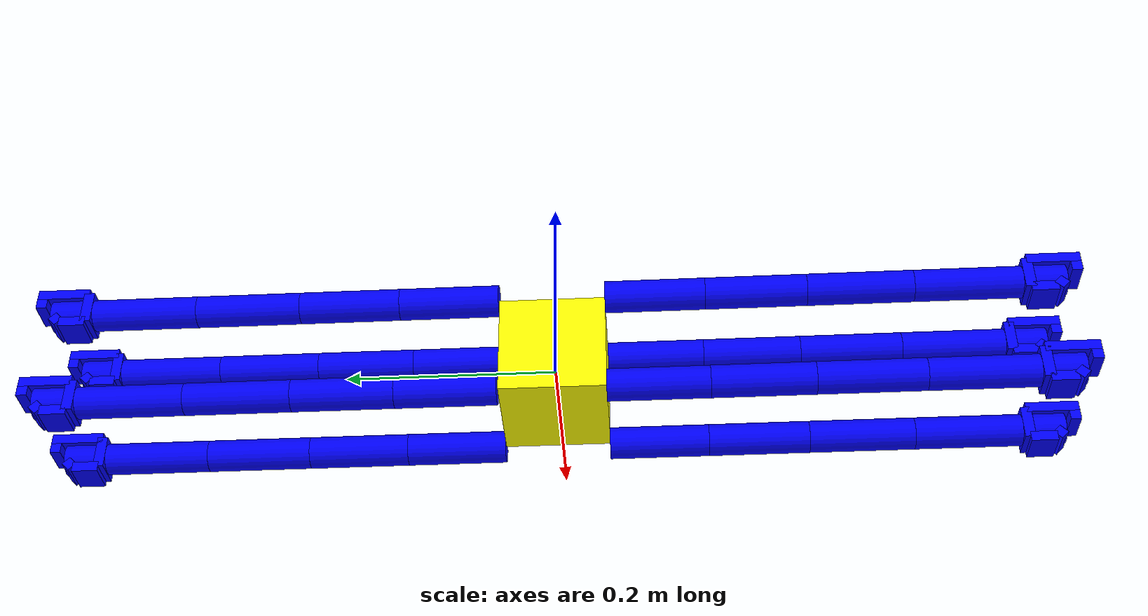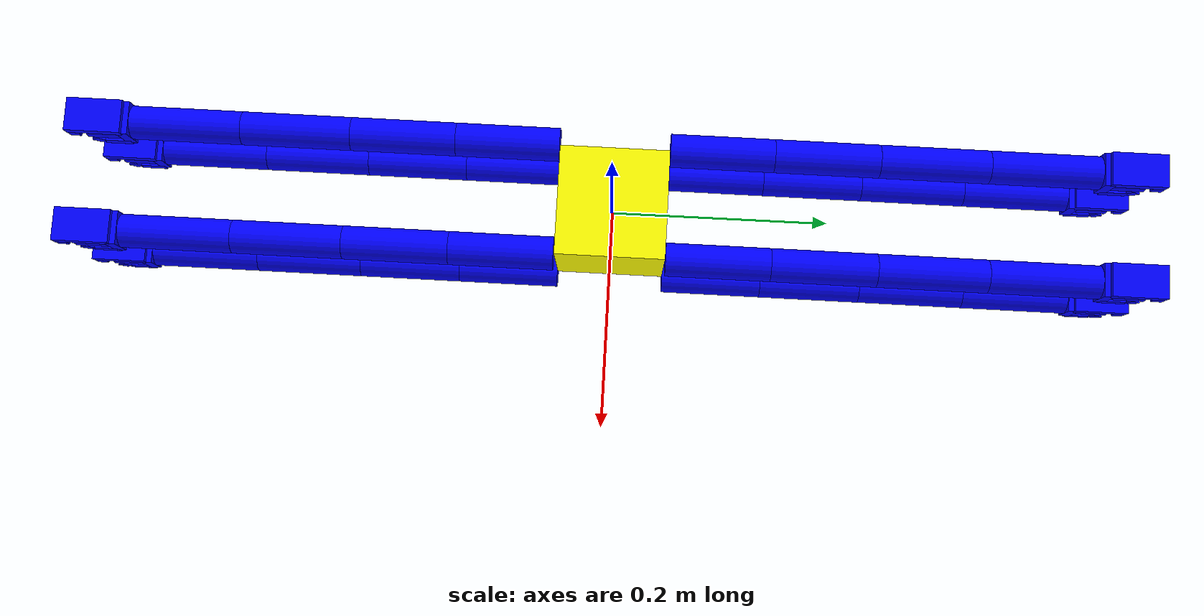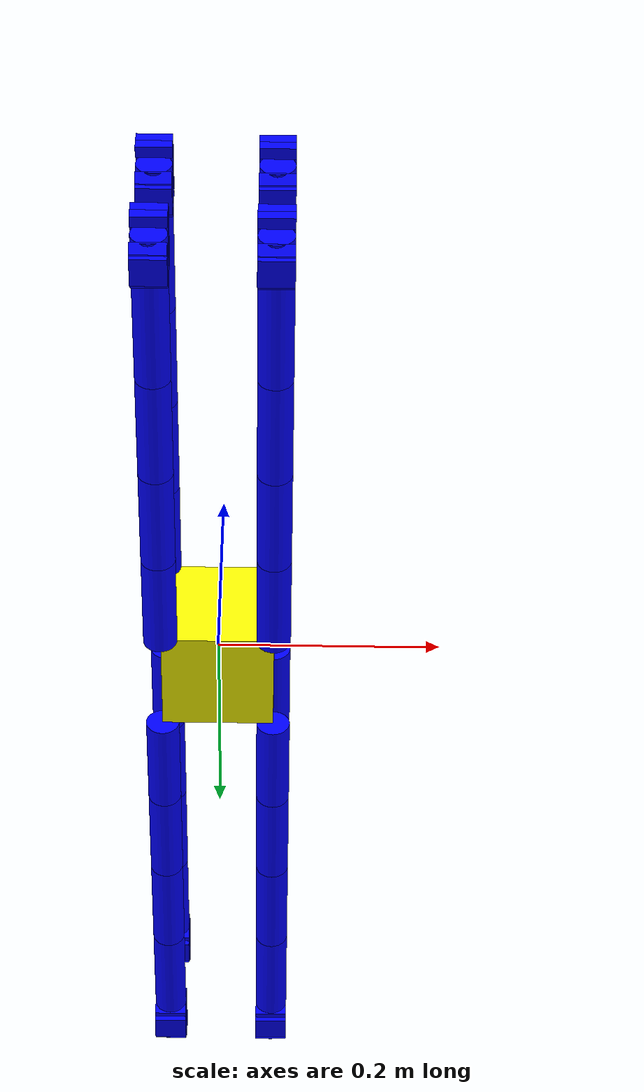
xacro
<?xml version="1.0"?>
<robot xmlns:xacro="http://www.ros.org/wiki/xacro" name="demo_robo" >
  <!-- The following included files set up definitions of parts of the robot body -->
  <!-- misc common stuff? -->
  <xacro:include filename="$(find gazebo_demo)/urdf/common.xacro" />
  <!-- material definition -->
  <xacro:include filename="$(find gazebo_demo)/urdf/material.urdf.xacro" />
  <!-- gazebo definition -->
  <xacro:include filename="$(find gazebo_demo)/gazebo/gazebo.urdf.xacro" />
  <!-- body definition -->
  <xacro:include filename="$(find gazebo_demo)/urdf/body/body.urdf.xacro" />
  <!-- limb definition -->
  <xacro:include filename="$(find gazebo_demo)/urdf/limb/limb.urdf.xacro" />
  <!-- end effector definition -->
  <xacro:include filename="$(find gazebo_demo)/urdf/end_effector/end_effector.urdf.xacro" />

  <!-- Now we can start using the macros included above to define our robot -->
  <xacro:common/>
  <!-- body and 8 limbs -->
  <link name="base_link"/>
  <xacro:BaseLinkToBody name_="body"/>
  <property name="lx" value="0.050"/>
  <property name="ly" value="0.050"/>
  <property name="lz" value="0.050"/>
  <xacro:link_limb4 limbNo="1" parent="body" px="+${lx}" py="+${ly}" pz="+${lz}" prow="-${M_PI/2}" ppit="0" pyaw="0"/>
  <xacro:link_limb4 limbNo="2" parent="body" px="+${lx}" py="-${ly}" pz="+${lz}" prow="-${M_PI/2}" ppit="0" pyaw="-${M_PI}"/>
  <xacro:link_limb4 limbNo="3" parent="body" px="+${lx}" py="+${ly}" pz="-${lz}" prow="-${M_PI/2}" ppit="0" pyaw="0"/>
  <xacro:link_limb4 limbNo="4" parent="body" px="+${lx}" py="-${ly}" pz="-${lz}" prow="-${M_PI/2}" ppit="0" pyaw="-${M_PI}"/>
  <xacro:link_limb4 limbNo="5" parent="body" px="-${lx}" py="+${ly}" pz="+${lz}" prow="-${M_PI/2}" ppit="0" pyaw="0"/>
  <xacro:link_limb4 limbNo="6" parent="body" px="-${lx}" py="-${ly}" pz="+${lz}" prow="-${M_PI/2}" ppit="0" pyaw="-${M_PI}"/>
  <xacro:link_limb4 limbNo="7" parent="body" px="-${lx}" py="+${ly}" pz="-${lz}" prow="-${M_PI/2}" ppit="0" pyaw="0"/>
  <xacro:link_limb4 limbNo="8" parent="body" px="-${lx}" py="-${ly}" pz="-${lz}" prow="-${M_PI/2}" ppit="0" pyaw="-${M_PI}"/>

  <!-- End Effector -->
  <property name="lengthEE" value="0.100"/>
  <xacro:EE_gripper limbNo="1" parent="link1_4" px="+${lengthEE}" py="0" pz="0" prow="-${M_PI/2}" ppit="0" pyaw="0"/>
  <xacro:EE_gripper limbNo="2" parent="link2_4" px="+${lengthEE}" py="0" pz="0" prow="-${M_PI/2}" ppit="0" pyaw="0"/>
  <xacro:EE_gripper limbNo="3" parent="link3_4" px="+${lengthEE}" py="0" pz="0" prow="-${M_PI/2}" ppit="0" pyaw="0"/>
  <xacro:EE_gripper limbNo="4" parent="link4_4" px="+${lengthEE}" py="0" pz="0" prow="-${M_PI/2}" ppit="0" pyaw="0"/>
  <xacro:EE_gripper limbNo="5" parent="link5_4" px="+${lengthEE}" py="0" pz="0" prow="-${M_PI/2}" ppit="0" pyaw="0"/>
  <xacro:EE_gripper limbNo="6" parent="link6_4" px="+${lengthEE}" py="0" pz="0" prow="-${M_PI/2}" ppit="0" pyaw="0"/>
  <xacro:EE_gripper limbNo="7" parent="link7_4" px="+${lengthEE}" py="0" pz="0" prow="-${M_PI/2}" ppit="0" pyaw="0"/>
  <xacro:EE_gripper limbNo="8" parent="link8_4" px="+${lengthEE}" py="0" pz="0" prow="-${M_PI/2}" ppit="0" pyaw="0"/>

  <xacro:ControlAndImu namespace="/demo_robo" imu_body="body"/>
</robot>

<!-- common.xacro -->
<robot xmlns:xacro="http://ros.org/wiki/xacro">
  <property name="M_PI" value="3.1415926535897931" />
  <property name="VELOCITY_LIMIT_SCALE" value="0.6" />

  <!-- motor information -->
  <property name="dx_lo" value="-${150*M_PI/180}" />
  <property name="dx_up" value="+${150*M_PI/180}" />
  <property name="dx_eff" value="3.621866" />
  <property name="dx_vel" value="7.016224" />

  <!-- Mathmatic -->
  <property name="Sin45" value="0.707106781"/>
  <property name="Cos45" value="0.707106781"/>

  <xacro:macro name="common">
  </xacro:macro>
</robot>

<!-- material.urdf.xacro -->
<robot xmlns:xacro="http://ros.org/wiki/xacro">
  <material name="Cyan">
    <color rgba="0.0 0.0 1.0 1.0"/>
  </material>

  <material name="Blue">
    <color rgba="0.0 0.0 0.8 1.0"/>
  </material>

  <material name="Green">
    <color rgba="0.0 0.8 0.0 1.0"/>
  </material>

  <material name="Red">
    <color rgba="0.8 0.0 0.0 1.0"/>
  </material>

  <material name="White">
    <color rgba="1.0 1.0 1.0 1.0"/>
  </material>

  <material name="Yellow">
    <color rgba="1.0 1.0 0.0 1.0"/>
  </material>

</robot>

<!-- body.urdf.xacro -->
<robot xmlns:xacro="http://ros.org/wiki/xacro">
  <xacro:include filename="$(find gazebo_demo)/urdf/body/body.gazebo.xacro"/>
  <xacro:include filename="$(find gazebo_demo)/urdf/body/body.transmission.xacro"/>
  <xacro:include filename="$(find gazebo_demo)/urdf/common.xacro"/>

  <!-- Geometry property for box -->
  <!-- body size -->
  <property name="b_x" value="0.100"/>
  <property name="b_y" value="0.100"/>
  <property name="b_z" value="0.100"/>
  <!-- body mass -->
  <property name="b_m" value="0.300"/>
  <!-- inertia tensol -->
  <property name="b_ixx" value="${(1/12)*b_m*(b_y*b_y+b_z*b_z)}"/>
  <property name="b_iyy" value="${(1/12)*b_m*(b_x*b_x+b_z*b_z)}"/>
  <property name="b_izz" value="${(1/12)*b_m*(b_x*b_x+b_y*b_y)}"/>
  <property name="b_ixy" value="0"/>
  <property name="b_ixz" value="0"/>
  <property name="b_iyz" value="0"/>

  <!-- ============= Body Description ============= -->
  <xacro:macro name="BaseLinkToBody" params="name_">
    <joint name="jointblTobody" type="fixed">
      <parent link="base_link"/>
      <child link="${name_}"/>
      <origin xyz="0 0 0" rpy="0 0 0"/>
    </joint>
    <!-- central body -->
    <link name="${name_}">
      <inertial>
        <origin xyz="0 0 0" rpy="0 0 0"/>
        <mass value="${b_m}"/>
        <inertia ixx="+${b_ixx}" ixy="-${b_ixy}" ixz="-${b_ixz}"
                                 iyy="+${b_iyy}" iyz="-${b_iyz}"
                                                 izz="+${b_izz}"/>
      </inertial>
      <visual>
        <origin xyz="0 0 0" rpy="0 0 0"/>
        <geometry>
          <box size="${b_x} ${b_y} ${b_z}"/>
        </geometry>
        <material name="Yellow"/>
      </visual>
      <collision>
        <origin xyz="0 0 0" rpy="0 0 0"/>
        <geometry>
          <box size="${b_x} ${b_y} ${b_z}"/>
        </geometry>
      </collision>
    </link>

    <xacro:BaseLinkToBody_gazebo name="${name_}" />
    <xacro:BaseLinkToBody_transmission name="${name_}" />
  </xacro:macro>
</robot>

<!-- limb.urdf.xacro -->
<!-- XML namespaces -->
<robot xmlns:xacro="http://www.ros.org/wiki/xacro">
  <xacro:include filename="$(find gazebo_demo)/urdf/limb/limb.gazebo.xacro"/>
  <xacro:include filename="$(find gazebo_demo)/urdf/limb/limb.transmission.xacro"/>
  <xacro:include filename="$(find gazebo_demo)/urdf/common.xacro"/>

  <!-- length and radius property of cylinder link of a limb -->
  <!-- link1 -->
  <property name="l1_length" value="0.094" />
  <property name="l1_radius" value="0.015" />
  <property name="l1_mass"   value="0.2"/>
  <property name="l1_ixx"    value="${(1/4)*l1_mass*l1_radius*l1_radius+(1/12)*l1_mass*l1_length*l1_length}"/>
  <property name="l1_iyy"    value="${(1/4)*l1_mass*l1_radius*l1_radius+(1/12)*l1_mass*l1_length*l1_length}"/>
  <property name="l1_izz"    value="${(1/2)*l1_mass*l1_radius*l1_radius}"/>
  <property name="l1_ixy"    value="0" />
  <property name="l1_ixz"    value="0" />
  <property name="l1_iyz"    value="0" />
  <!-- link2 -->
  <property name="l2_length" value="0.095" />
  <property name="l2_radius" value="0.015" />
  <property name="l2_mass"   value="0.2"/>
  <property name="l2_ixx"    value="${(1/4)*l2_mass*l2_radius*l2_radius+(1/12)*l2_mass*l2_length*l2_length}"/>
  <property name="l2_iyy"    value="${(1/4)*l2_mass*l2_radius*l2_radius+(1/12)*l2_mass*l2_length*l2_length}"/>
  <property name="l2_izz"    value="${(1/2)*l2_mass*l2_radius*l2_radius}"/>
  <property name="l2_ixy"    value="0" />
  <property name="l2_ixz"    value="0" />
  <property name="l2_iyz"    value="0" />
  <!-- link3 -->
  <property name="l3_length" value="0.099" />
  <property name="l3_radius" value="0.015" />
  <property name="l3_mass"   value="0.2"/>
  <property name="l3_ixx"    value="${(1/4)*l3_mass*l3_radius*l3_radius+(1/12)*l3_mass*l3_length*l3_length}"/>
  <property name="l3_iyy"    value="${(1/4)*l3_mass*l3_radius*l3_radius+(1/12)*l3_mass*l3_length*l3_length}"/>
  <property name="l3_izz"    value="${(1/2)*l3_mass*l3_radius*l3_radius}"/>
  <property name="l3_ixy"    value="0" />
  <property name="l3_ixz"    value="0" />
  <property name="l3_iyz"    value="0" />
  <!-- link4 -->
  <property name="l4_length" value="0.140" />
  <property name="l4_radius" value="0.015" />
  <property name="l4_mass"   value="0.2"/>
  <property name="l4_ixx"    value="${(1/4)*l4_mass*l4_radius*l4_radius+(1/12)*l4_mass*l4_length*l4_length}"/>
  <property name="l4_iyy"    value="${(1/4)*l4_mass*l4_radius*l4_radius+(1/12)*l4_mass*l4_length*l4_length}"/>
  <property name="l4_izz"    value="${(1/2)*l4_mass*l4_radius*l4_radius}"/>
  <property name="l4_ixy"    value="0" />
  <property name="l4_ixz"    value="0" />
  <property name="l4_iyz"    value="0" />

  <!-- ============= Limb Description ============= -->
  <xacro:macro name="link_limb4" params="limbNo parent px py pz prow ppit pyaw">
    <joint name="joint${limbNo}_01" type="revolute">
      <parent link="${parent}"/>
      <child link="link${limbNo}_1"/>
      <origin xyz="${px} ${py} ${pz}" rpy="${prow} ${ppit} ${pyaw}"/>
      <axis xyz="0 0 1"/>
      <limit lower="${dx_lo}" upper="${dx_up}" effort="${dx_eff}" velocity="${dx_vel}"/>
    </joint>
    <link name="link${limbNo}_1">
      <inertial>
        <origin xyz="0 0 ${l1_length/2}" rpy="0 0 0"/>
        <mass value="${l1_mass}"/>
        <inertia ixx="${l1_ixx}" ixy="-${l1_ixy}" ixz="-${l1_ixz}"
                        iyy="${l1_iyy}"  iyz="-${l1_iyz}"
                                    izz="${l1_izz}"/>
      </inertial>
      <visual>
        <origin xyz="0 0 ${l1_length/2}" rpy="0 0 0"/>
        <geometry>
          <cylinder radius="${l1_radius}" length="${l1_length}"/>
        </geometry>
        <material name="Cyan"/>
      </visual>
      <collision>
        <origin xyz="0 0 ${l1_length/2}" rpy="0 0 0"/>
        <geometry>
          <cylinder radius="${l1_radius}" length="${l1_length}"/>
        </geometry>
      </collision>
    </link>
    <joint name="joint${limbNo}_12" type="revolute">
      <parent link="link${limbNo}_1"/>
      <child link="link${limbNo}_2"/>
      <origin xyz="0 0 ${l1_length}" rpy="0 -${M_PI/2} +${M_PI/2}"/>
      <axis xyz="0 0 1"/>
      <limit lower="${dx_lo}" upper="${dx_up}" effort="${dx_eff}" velocity="${dx_vel}"/>
    </joint>
    <link name="link${limbNo}_2">
      <inertial>
        <origin xyz="${l2_length/2} 0 0" rpy="0 +${M_PI/2} 0"/>
        <mass value="${l2_mass}"/>
        <inertia ixx="${l2_ixx}" ixy="-${l2_ixy}" ixz="-${l2_ixz}"
                       iyy="${l2_iyy}"  iyz="-${l2_iyz}"
                                  izz="${l2_izz}"/>
      </inertial>
      <visual>
        <origin xyz="${l2_length/2} 0 0" rpy="0 +${M_PI/2} 0"/>
        <geometry>
          <cylinder radius="${l2_radius}" length="${l2_length}"/>
        </geometry>
        <material name="Cyan"/>
      </visual>
      <collision>
        <origin xyz="${l2_length/2} 0 0" rpy="0 +${M_PI/2} 0"/>
        <geometry>
          <cylinder radius="${l2_radius}" length="${l2_length}"/>
        </geometry>
      </collision>
    </link>
    <joint name="joint${limbNo}_23" type="revolute">
      <parent link="link${limbNo}_2"/>
      <child link="link${limbNo}_3"/>
      <origin xyz="${l2_length} 0 0" rpy="+${M_PI/2} 0 0"/>
      <axis xyz="0 0 1"/>
      <limit lower="${dx_lo}" upper="${dx_up}" effort="${dx_eff}" velocity="${dx_vel}"/>
    </joint>
    <link name="link${limbNo}_3">
      <inertial>
        <origin xyz="${l3_length/2} 0 0" rpy="0 +${M_PI/2} 0"/>
        <mass value="${l3_mass}"/>
        <inertia ixx="${l3_ixx}" ixy="-${l3_ixy}" ixz="-${l3_ixz}"
                     iyy="${l3_iyy}"  iyz="-${l3_iyz}"
                               izz="${l3_izz}"/>
      </inertial>
      <visual>
        <origin xyz="${l3_length/2} 0 0" rpy="0 +${M_PI/2} 0"/>
        <geometry>
          <cylinder radius="${l3_radius}" length="${l3_length}"/>
        </geometry>
        <material name="Cyan"/>
      </visual>
      <collision>
        <origin xyz="${l3_length/2} 0 0" rpy="0 +${M_PI/2} 0"/>
        <geometry>
          <cylinder radius="${l3_radius}" length="${l3_length}"/>
        </geometry>
      </collision>
    </link>
    <joint name="joint${limbNo}_34" type="revolute">
      <parent link="link${limbNo}_3"/>
      <child link="link${limbNo}_4"/>
      <origin xyz="${l3_length} 0 0" rpy="0 0 0"/>
      <axis xyz="0 0 1"/>
      <limit lower="${dx_lo}" upper="${dx_up}" effort="${dx_eff}" velocity="${dx_vel}"/>
    </joint>
    <link name="link${limbNo}_4">
      <inertial>
        <origin xyz="${l4_length/2} 0 0" rpy="0 +${M_PI/2} 0"/>
        <mass value="${l4_mass}"/>
        <inertia ixx="${l4_ixx}" ixy="-${l4_ixy}" ixz="-${l4_ixz}"
                     iyy="${l4_iyy}"  iyz="-${l4_iyz}"
                               izz="${l4_izz}"/>
      </inertial>
      <visual>
        <origin xyz="${l4_length/2} 0 0" rpy="0 +${M_PI/2} 0"/>
        <geometry>
          <cylinder radius="${l4_radius}" length="${l4_length}"/>
        </geometry>
        <material name="Cyan"/>
      </visual>
      <collision>
        <origin xyz="${l4_length/2} 0 0" rpy="0 +${M_PI/2} 0"/>
        <geometry>
          <cylinder radius="${l4_radius}" length="${l4_length}"/>
        </geometry>
      </collision>
    </link>

    <xacro:limb4_gazebo limbNo_g="${limbNo}" />
    <xacro:limb4_transmission limbNo_t="${limbNo}" />
  </xacro:macro>
</robot>

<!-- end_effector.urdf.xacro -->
<!-- XML namespaces -->
<robot xmlns:xacro="http://ros.org/wiki/xacro">
  <xacro:include filename="$(find gazebo_demo)/urdf/end_effector/end_effector.gazebo.xacro"/>
  <xacro:include filename="$(find gazebo_demo)/urdf/end_effector/end_effector.transmission.xacro"/>
  <xacro:include filename="$(find gazebo_demo)/urdf/common.xacro"/>

  <!-- length and radius property of cylinder link of a limb -->
  <!-- EE_base -->
  <xacro:property name="Eb_x"   value="0.010" />
  <xacro:property name="Eb_y"   value="0.030" />
  <xacro:property name="Eb_z"   value="${0.030+0.002}" /> <!-- 1mm margin -->
  <xacro:property name="Eb_m"   value="0.050"/>
  <xacro:property name="Eb_ixx" value="${(1/12)*Eb_m*(Eb_y*Eb_y+Eb_z*Eb_z)}"/>
  <xacro:property name="Eb_iyy" value="${(1/12)*Eb_m*(Eb_x*Eb_x+Eb_z*Eb_z)}"/>
  <xacro:property name="Eb_izz" value="${(1/12)*Eb_m*(Eb_x*Eb_x+Eb_y*Eb_y)}"/>
  <xacro:property name="Eb_ixy" value="0" />
  <xacro:property name="Eb_ixz" value="0" />
  <xacro:property name="Eb_iyz" value="0" />

  <!-- EE_up -->
  <xacro:property name="Eu_x"   value="0.050" />
  <xacro:property name="Eu_y"   value="0.030" />
  <xacro:property name="Eu_z"   value="0.010" />
  <xacro:property name="Eu_m"   value="0.050"/>
  <xacro:property name="Eu_ixx" value="${(1/12)*Eu_m*(Eu_y*Eu_y+Eu_z*Eu_z)}"/>
  <xacro:property name="Eu_iyy" value="${(1/12)*Eu_m*(Eu_x*Eu_x+Eu_z*Eu_z)}"/>
  <xacro:property name="Eu_izz" value="${(1/12)*Eu_m*(Eu_x*Eu_x+Eu_y*Eu_y)}"/>
  <xacro:property name="Eu_ixy" value="0" />
  <xacro:property name="Eu_ixz" value="0" />
  <xacro:property name="Eu_iyz" value="0" />
  <xacro:property name="Eu_up"  value="+${10*M_PI/180}"/>
  <xacro:property name="Eu_lo"  value="-${M_PI/2 + 5 *M_PI/180}"/>

  <!-- EE_down -->
  <xacro:property name="Ed_x"   value="0.025" />
  <xacro:property name="Ed_y"   value="0.030" />
  <xacro:property name="Ed_z"   value="0.010" />
  <xacro:property name="Ed_m"   value="0.050"/>
  <xacro:property name="Ed_ixx" value="${(1/12)*Ed_m*(Ed_y*Ed_y+Ed_z*Ed_z)}"/>
  <xacro:property name="Ed_iyy" value="${(1/12)*Ed_m*(Ed_x*Ed_x+Ed_z*Ed_z)}"/>
  <xacro:property name="Ed_izz" value="${(1/12)*Ed_m*(Ed_x*Ed_x+Ed_y*Ed_y)}"/>
  <xacro:property name="Ed_ixy" value="0" />
  <xacro:property name="Ed_ixz" value="0" />
  <xacro:property name="Ed_iyz" value="0" />
  <xacro:property name="Ed_up"  value="+${M_PI/2}"/>
  <xacro:property name="Ed_lo"  value="-${10*M_PI/180}"/>

  <!-- EE_nail -->
  <xacro:property name="En_x"   value="0.010" />
  <xacro:property name="En_y"   value="0.030" />
  <xacro:property name="En_z"   value="0.010" />
  <xacro:property name="En_m"   value="0.020" />
  <xacro:property name="En_ixx" value="${(1/12)*En_m*(En_y*En_y+En_z*En_z)}"/>
  <xacro:property name="En_iyy" value="${(1/12)*En_m*(En_x*En_x+En_z*En_z)}"/>
  <xacro:property name="En_izz" value="${(1/12)*En_m*(En_x*En_x+En_y*En_y)}"/>
  <xacro:property name="En_ixy" value="0" />
  <xacro:property name="En_ixz" value="0" />
  <xacro:property name="En_iyz" value="0" />

  <!-- ============ EE Description ============ -->
  <xacro:macro name="EE_gripper" params="limbNo parent px py pz prow ppit pyaw">
    <!-- EE_base -->
    <joint name="joint${limbNo}_lb" type="fixed">
      <parent link="${parent}"/>
      <child link="EEbase_${limbNo}"/>
      <origin xyz="${px} ${py} ${pz}" rpy="-${M_PI/2} 0 0"/>
    </joint>
    <link name="EEbase_${limbNo}">
      <inertial>
        <origin xyz="${Eb_x/2} 0 0" rpy="0 0 0"/>
        <mass value="${Eb_m}"/>
        <inertia ixx="+${Eb_ixx}" ixy="-${Eb_ixy}" ixz="-${Eb_ixz}"
                                  iyy="+${Eb_iyy}" iyz="-${Eb_iyz}"
                                                   izz="+${Eb_izz}"/>
      </inertial>
      <visual>
        <origin xyz="${Eb_x/2} 0 0" rpy="0 0 0"/>
        <geometry>
          <box size="${Eb_x} ${Eb_y} ${Eb_z}"/>
        </geometry>
        <material name="Cyan"/>
      </visual>
      <collision>
        <origin xyz="${Eb_x/2} 0 0" rpy="0 0 0"/>
        <geometry>
          <box size="${Eb_x} ${Eb_y} ${Eb_z}"/>
        </geometry>
      </collision>
    </link>
    <!-- EE_up -->
    <joint name="joint${limbNo}_bu" type="revolute">
      <parent link="EEbase_${limbNo}"/>
      <child link="EEup_${limbNo}"/>
      <origin xyz="+${Eb_x/2} 0  +${Eb_z/2}" rpy="0 0 0"/>
      <axis xyz="0 1 0"/>
      <limit lower="${Eu_lo}" upper="${Eu_up}" effort="${10*dx_eff}" velocity="${dx_vel}"/>
    </joint>
    <link name="EEup_${limbNo}">
      <inertial>
        <origin xyz="${Eu_x/2} 0 0" rpy="0 0 0"/>
        <mass value="${Eu_m}"/>
        <inertia ixx="+${Eu_ixx}" ixy="-${Eu_ixy}" ixz="-${Eu_ixz}"
                                  iyy="+${Eu_iyy}" iyz="-${Eu_iyz}"
                                                   izz="+${Eu_izz}"/>
      </inertial>
      <visual>
        <origin xyz="${Eu_x/2} 0 0" rpy="0 0 0"/>
        <geometry>
          <box size="${Eu_x} ${Eu_y} ${Eu_z}"/>
        </geometry>
        <material name="Cyan"/>
      </visual>
      <collision>
        <origin xyz="${Eu_x/2} 0 0" rpy="0 0 0"/>
        <geometry>
          <box size="${Eu_x} ${Eu_y} ${Eu_z}"/>
        </geometry>
      </collision>
    </link>
    <!-- EE_down -->
    <joint name="joint${limbNo}_bd" type="revolute">
      <parent link="EEbase_${limbNo}"/>
      <child link="EEdown_${limbNo}"/>
      <origin xyz="+${Eb_x/2} 0  -${Eb_z/2}" rpy="0 0 0"/>
      <axis xyz="0 1 0"/>
      <limit lower="${Ed_lo}" upper="${Ed_up}" effort="${10*dx_eff}" velocity="${dx_vel}"/>
    </joint>
    <link name="EEdown_${limbNo}">
      <inertial>
        <origin xyz="${Ed_x/2} 0 0" rpy="0 0 0"/>
        <mass value="${Ed_m}"/>
        <inertia ixx="+${Ed_ixx}" ixy="-${Ed_ixy}" ixz="-${Ed_ixz}"
                                  iyy="+${Ed_iyy}" iyz="-${Ed_iyz}"
                                                   izz="+${Ed_izz}"/>
      </inertial>
      <visual>
        <origin xyz="${Ed_x/2} 0 0" rpy="0 0 0"/>
        <geometry>
          <box size="${Ed_x} ${Ed_y} ${Ed_z}"/>
        </geometry>
        <material name="Cyan"/>
      </visual>
      <collision>
        <origin xyz="${Ed_x/2} 0 0" rpy="0 0 0"/>
        <geometry>
          <box size="${Ed_x} ${Ed_y} ${Ed_z}"/>
        </geometry>
      </collision>
    </link>

    <xacro:EE_gazebo limbNo_g="${limbNo}" />
    <xacro:EE_transmission limbNo_t="${limbNo}" />

    <!-- EEupNail -->
    <joint name="joint${limbNo}_un" type="fixed">
      <parent link="EEup_${limbNo}"/>
      <child link="EEuNail_${limbNo}"/>
      <origin xyz="+${Eu_x} 0  -${Eu_z/2}" rpy="0 0 0"/>
    </joint>
    <link name="EEuNail_${limbNo}">
      <inertial>
        <origin xyz="-${En_x/2} 0 -${En_z/2}" rpy="0 0 0"/>
        <mass value="${En_m}"/>
        <inertia ixx="+${En_ixx}" ixy="-${En_ixy}" ixz="-${En_ixz}"
                                  iyy="+${En_iyy}" iyz="-${En_iyz}"
                                                   izz="+${En_izz}"/>
      </inertial>
      <visual>
        <origin xyz="-${En_x/2} 0 -${En_z/2}" rpy="0 0 0"/>
        <geometry>
          <box size="${En_x} ${En_y} ${En_z}"/>
        </geometry>
        <material name="Cyan"/>
      </visual>
      <collision>
        <origin xyz="-${En_x/2} 0 -${En_z/2}" rpy="0 0 0"/>
        <geometry>
          <box size="${En_x} ${En_y} ${En_z}"/>
        </geometry>
      </collision>
    </link>

    <!-- EEdownNail -->
    <joint name="joint${limbNo}_dn" type="fixed">
      <parent link="EEdown_${limbNo}"/>
      <child link="EEdNail_${limbNo}"/>
      <origin xyz="+${Ed_x} 0  0" rpy="0 +${M_PI/4} 0"/>
    </joint>
    <link name="EEdNail_${limbNo}">
      <inertial>
        <origin xyz="0 0 +${En_z/2}" rpy="0 0 0"/>
        <mass value="${En_m}"/>
        <inertia ixx="+${En_ixx}" ixy="-${En_ixy}" ixz="-${En_ixz}"
                                  iyy="+${En_iyy}" iyz="-${En_iyz}"
                                                   izz="+${En_izz}"/>
      </inertial>
      <visual>
        <origin xyz="0 0 +${En_z/2}" rpy="0 0 0"/>
        <geometry>
          <box size="${En_x} ${En_y} ${En_z}"/>
        </geometry>
        <material name="Cyan"/>
      </visual>
      <collision>
        <origin xyz="0 0 +${En_z/2}" rpy="0 0 0"/>
        <geometry>
          <box size="${En_x} ${En_y} ${En_z}"/>
        </geometry>
      </collision>
    </link>
  </xacro:macro>
</robot>
